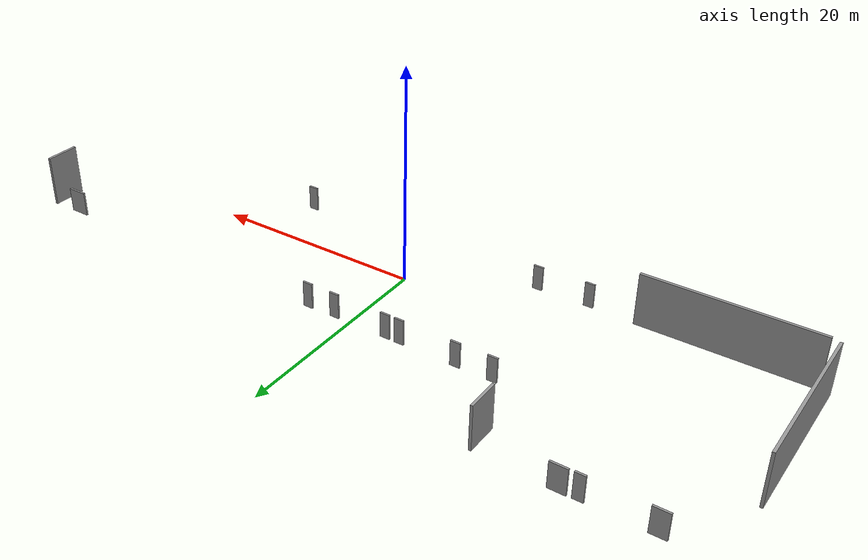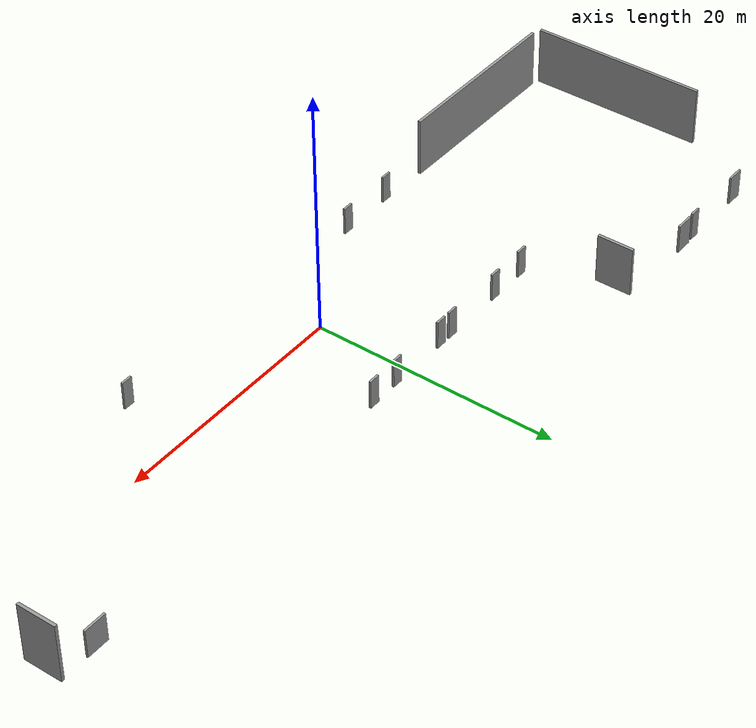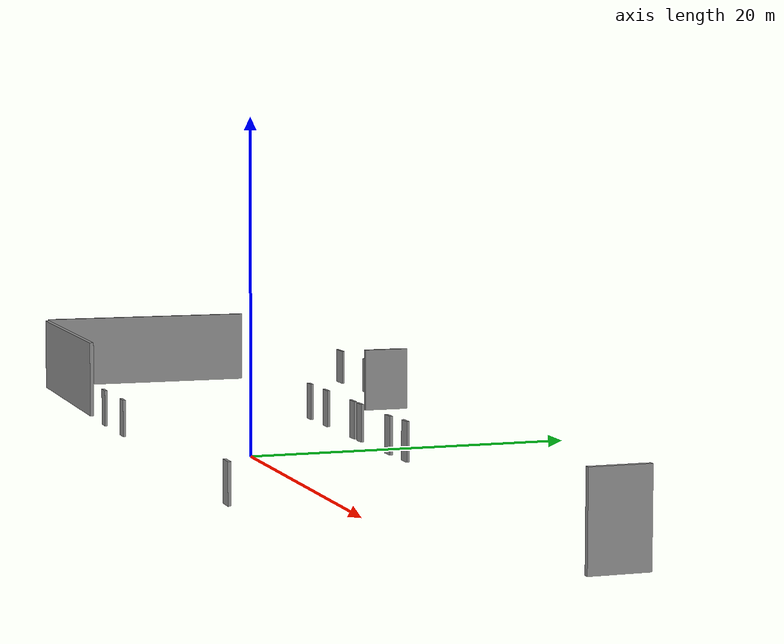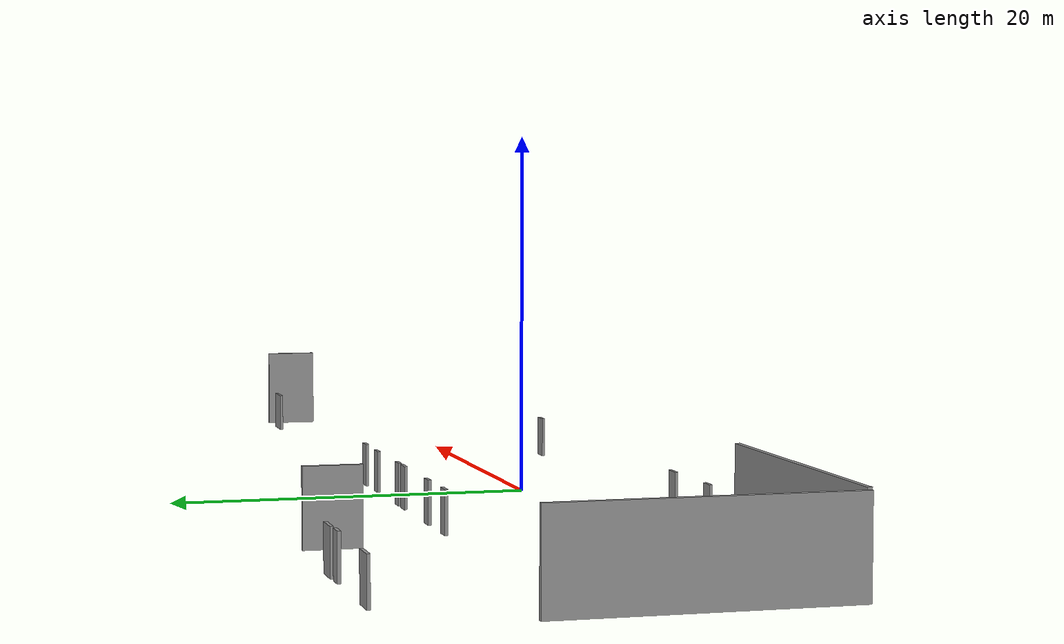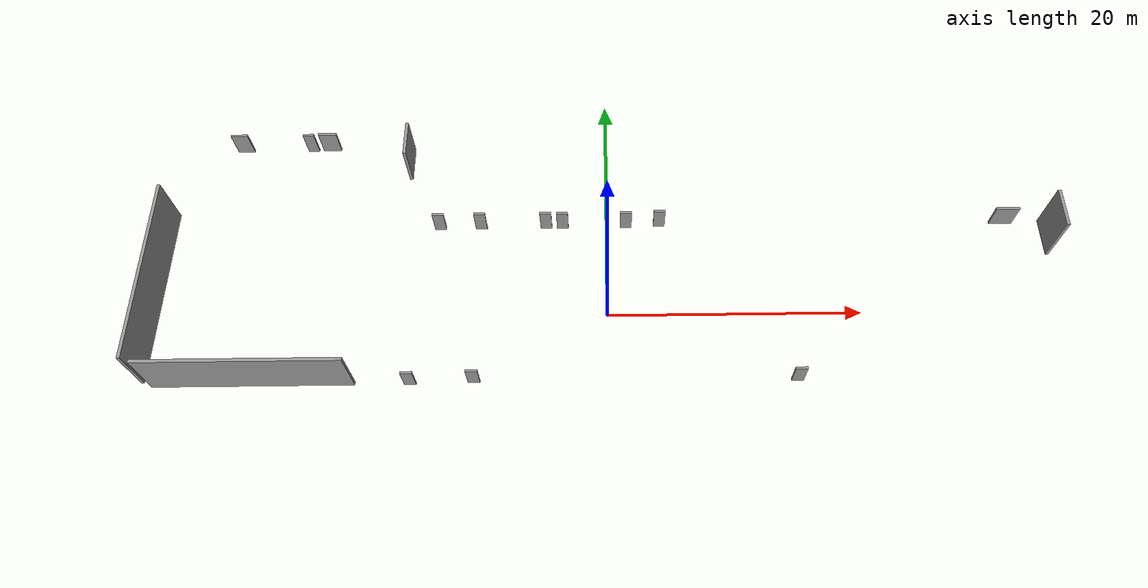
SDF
<?xml version='1.0'?>
<sdf version='1.7'>
  <model name='campus_doors'>
    <pose>0.175976 5.1365 0 0 -0 0</pose>
    <link name='Door_10'>
      <collision name='Door_10_Collision'>
        <geometry>
          <box>
            <size>0.92 0.17 2.35</size>
          </box>
        </geometry>
        <pose>0 0 1.175 0 -0 0</pose>
      </collision>
      <visual name='Door_10_Visual'>
        <pose>0 0 1.175 0 -0 0</pose>
        <geometry>
          <box>
            <size>0.92 0.17 2.35</size>
          </box>
        </geometry>
        <material>
          <script>
            <uri>file://media/materials/scripts/gazebo.material</uri>
            <name>Gazebo/Grey</name>
          </script>
        </material>
      </visual>
      <pose>-13.81 2.8905 0 0 -0 0</pose>
    </link>
    <link name='Door_11'>
      <collision name='Door_11_Collision'>
        <geometry>
          <box>
            <size>1.52 0.17 2.4</size>
          </box>
        </geometry>
        <pose>0 0 1.2 0 -0 0</pose>
      </collision>
      <visual name='Door_11_Visual'>
        <pose>0 0 1.2 0 -0 0</pose>
        <geometry>
          <box>
            <size>1.52 0.17 2.4</size>
          </box>
        </geometry>
        <material>
          <script>
            <uri>file://media/materials/scripts/gazebo.material</uri>
            <name>Gazebo/Grey</name>
          </script>
        </material>
      </visual>
      <pose>-23.6447 10.8106 0 0 -0 0</pose>
    </link>
    <link name='Door_12'>
      <collision name='Door_12_Collision'>
        <geometry>
          <box>
            <size>0.91 0.17 2.4</size>
          </box>
        </geometry>
        <pose>0 0 1.2 0 -0 0</pose>
      </collision>
      <visual name='Door_12_Visual'>
        <pose>0 0 1.2 0 -0 0</pose>
        <geometry>
          <box>
            <size>0.91 0.17 2.4</size>
          </box>
        </geometry>
        <material>
          <script>
            <uri>file://media/materials/scripts/gazebo.material</uri>
            <name>Gazebo/Grey</name>
          </script>
        </material>
      </visual>
      <pose>-25.226 10.7495 0 0 -0 0</pose>
    </link>
    <link name='Door_13'>
      <collision name='Door_13_Collision'>
        <geometry>
          <box>
            <size>1.4 0.17 2.4</size>
          </box>
        </geometry>
        <pose>0 0 1.2 0 -0 0</pose>
      </collision>
      <visual name='Door_13_Visual'>
        <pose>0 0 1.2 0 -0 0</pose>
        <geometry>
          <box>
            <size>1.4 0.17 2.4</size>
          </box>
        </geometry>
        <material>
          <script>
            <uri>file://media/materials/scripts/gazebo.material</uri>
            <name>Gazebo/Grey</name>
          </script>
        </material>
      </visual>
      <pose>-31.026 10.7495 0 0 -0 0</pose>
    </link>
    <link name='Door_17'>
      <collision name='Door_17_Collision'>
        <geometry>
          <box>
            <size>0.93 0.17 2.35</size>
          </box>
        </geometry>
        <pose>0 0 1.175 0 -0 0</pose>
      </collision>
      <visual name='Door_17_Visual'>
        <pose>0 0 1.175 0 -0 0</pose>
        <geometry>
          <box>
            <size>0.93 0.17 2.35</size>
          </box>
        </geometry>
        <material>
          <script>
            <uri>file://media/materials/scripts/gazebo.material</uri>
            <name>Gazebo/Grey</name>
          </script>
        </material>
      </visual>
      <pose>14.254 -10.6365 0 0 -0 0</pose>
    </link>
    <link name='Door_18'>
      <collision name='Door_18_Collision'>
        <geometry>
          <box>
            <size>0.9 0.17 2.3</size>
          </box>
        </geometry>
        <pose>0 0 1.15 0 -0 0</pose>
      </collision>
      <visual name='Door_18_Visual'>
        <pose>0 0 1.15 0 -0 0</pose>
        <geometry>
          <box>
            <size>0.9 0.17 2.3</size>
          </box>
        </geometry>
        <material>
          <script>
            <uri>file://media/materials/scripts/gazebo.material</uri>
            <name>Gazebo/Grey</name>
          </script>
        </material>
      </visual>
      <pose>-15.256 -10.6365 0 0 -0 0</pose>
    </link>
    <link name='Door_19'>
      <collision name='Door_19_Collision'>
        <geometry>
          <box>
            <size>0.91 0.17 2.3</size>
          </box>
        </geometry>
        <pose>0 0 1.15 0 -0 0</pose>
      </collision>
      <visual name='Door_19_Visual'>
        <pose>0 0 1.15 0 -0 0</pose>
        <geometry>
          <box>
            <size>0.91 0.17 2.3</size>
          </box>
        </geometry>
        <material>
          <script>
            <uri>file://media/materials/scripts/gazebo.material</uri>
            <name>Gazebo/Grey</name>
          </script>
        </material>
      </visual>
      <pose>-10.416 -10.5365 0 0 -0 0</pose>
    </link>
    <link name='Door_4'>
      <collision name='Door_4_Collision'>
        <geometry>
          <box>
            <size>1.9 0.17 2.35</size>
          </box>
        </geometry>
        <pose>0 0 1.175 0 -0 0</pose>
      </collision>
      <visual name='Door_4_Visual'>
        <pose>0 0 1.175 0 -0 0</pose>
        <geometry>
          <box>
            <size>1.9 0.17 2.35</size>
          </box>
        </geometry>
        <material>
          <script>
            <uri>file://media/materials/scripts/gazebo.material</uri>
            <name>Gazebo/Grey</name>
          </script>
        </material>
      </visual>
      <pose>32.374 2.9105 0 0 -0 0</pose>
    </link>
    <link name='Door_5'>
      <collision name='Door_5_Collision'>
        <geometry>
          <box>
            <size>0.92 0.17 2.4</size>
          </box>
        </geometry>
        <pose>0 0 1.2 0 -0 0</pose>
      </collision>
      <visual name='Door_5_Visual'>
        <pose>0 0 1.2 0 -0 0</pose>
        <geometry>
          <box>
            <size>0.92 0.17 2.4</size>
          </box>
        </geometry>
        <material>
          <script>
            <uri>file://media/materials/scripts/gazebo.material</uri>
            <name>Gazebo/Grey</name>
          </script>
        </material>
      </visual>
      <pose>4.12402 2.9715 0 0 -0 0</pose>
    </link>
    <link name='Door_6'>
      <collision name='Door_6_Collision'>
        <geometry>
          <box>
            <size>0.92 0.17 2.34</size>
          </box>
        </geometry>
        <pose>0 0 1.17 0 -0 0</pose>
      </collision>
      <visual name='Door_6_Visual'>
        <pose>0 0 1.17 0 -0 0</pose>
        <geometry>
          <box>
            <size>0.92 0.17 2.34</size>
          </box>
        </geometry>
        <material>
          <script>
            <uri>file://media/materials/scripts/gazebo.material</uri>
            <name>Gazebo/Grey</name>
          </script>
        </material>
      </visual>
      <pose>1.40402 2.9105 0 0 -0 0</pose>
    </link>
    <link name='Door_7'>
      <collision name='Door_7_Collision'>
        <geometry>
          <box>
            <size>0.92 0.17 2.35</size>
          </box>
        </geometry>
        <pose>0 0 1.175 0 -0 0</pose>
      </collision>
      <visual name='Door_7_Visual'>
        <pose>0 0 1.175 0 -0 0</pose>
        <geometry>
          <box>
            <size>0.92 0.17 2.35</size>
          </box>
        </geometry>
        <material>
          <script>
            <uri>file://media/materials/scripts/gazebo.material</uri>
            <name>Gazebo/Grey</name>
          </script>
        </material>
      </visual>
      <pose>-3.77598 2.9105 0 0 -0 0</pose>
    </link>
    <link name='Door_8'>
      <collision name='Door_8_Collision'>
        <geometry>
          <box>
            <size>0.92 0.17 2.35</size>
          </box>
        </geometry>
        <pose>0 0 1.175 0 -0 0</pose>
      </collision>
      <visual name='Door_8_Visual'>
        <pose>0 0 1.175 0 -0 0</pose>
        <geometry>
          <box>
            <size>0.92 0.17 2.35</size>
          </box>
        </geometry>
        <material>
          <script>
            <uri>file://media/materials/scripts/gazebo.material</uri>
            <name>Gazebo/Grey</name>
          </script>
        </material>
      </visual>
      <pose>-5.12598 2.9105 0 0 -0 0</pose>
    </link>
    <link name='Door_9'>
      <collision name='Door_9_Collision'>
        <geometry>
          <box>
            <size>0.92 0.17 2.35</size>
          </box>
        </geometry>
        <pose>0 0 1.175 0 -0 0</pose>
      </collision>
      <visual name='Door_9_Visual'>
        <pose>0 0 1.175 0 -0 0</pose>
        <geometry>
          <box>
            <size>0.92 0.17 2.35</size>
          </box>
        </geometry>
        <material>
          <script>
            <uri>file://media/materials/scripts/gazebo.material</uri>
            <name>Gazebo/Grey</name>
          </script>
        </material>
      </visual>
      <pose>-10.4593 2.91092 0 0 -0 0</pose>
    </link>
    <link name='Wall_15'>
      <collision name='Wall_15_Collision'>
        <geometry>
          <box>
            <size>3 0.25 4.1</size>
          </box>
        </geometry>
        <pose>0 0 2.05 0 -0 0</pose>
      </collision>
      <visual name='Wall_15_Visual'>
        <pose>0 0 2.05 0 -0 0</pose>
        <geometry>
          <box>
            <size>3 0.25 4.1</size>
          </box>
        </geometry>
        <material>
          <script>
            <uri>file://media/materials/scripts/gazebo.material</uri>
            <name>Gazebo/Grey</name>
          </script>
          <ambient>1 1 1 1</ambient>
        </material>
        <meta>
          <layer>0</layer>
        </meta>
      </visual>
      <pose>-16.626 9.1885 0 0 -0 1.5708</pose>
    </link>
    <link name='Wall_2'>
      <collision name='Wall_2_Collision'>
        <geometry>
          <box>
            <size>15.404 0.25 4.9</size>
          </box>
        </geometry>
        <pose>0 0 2.45 0 -0 0</pose>
      </collision>
      <visual name='Wall_2_Visual'>
        <pose>0 0 2.45 0 -0 0</pose>
        <geometry>
          <box>
            <size>15.404 0.25 4.9</size>
          </box>
        </geometry>
        <material>
          <script>
            <uri>file://media/materials/scripts/gazebo.material</uri>
            <name>Gazebo/Grey</name>
          </script>
          <ambient>1 1 1 1</ambient>
        </material>
        <meta>
          <layer>0</layer>
        </meta>
      </visual>
      <pose>-27.1655 -10.5635 0 0 -0 3.14159</pose>
    </link>
    <link name='Wall_4'>
      <pose>-35.624 -2.9675 0 0 -0 1.5708</pose>
      <visual name='Wall_4_Visual_0'>
        <pose>0 0 2.45 0 -0 0</pose>
        <geometry>
          <box>
            <size>14.712 0.25 4.9</size>
          </box>
        </geometry>
        <material>
          <script>
            <uri>file://media/materials/scripts/gazebo.material</uri>
            <name>Gazebo/Grey</name>
          </script>
          <ambient>1 1 1 1</ambient>
        </material>
        <meta>
          <layer>0</layer>
        </meta>
      </visual>
      <collision name='Wall_4_Collision_0'>
        <geometry>
          <box>
            <size>14.712 0.25 4.9</size>
          </box>
        </geometry>
        <pose>0 0 2.45 0 -0 0</pose>
      </collision>
    </link>
    <link name='Wall_9'>
      <collision name='Wall_9_Collision'>
        <geometry>
          <box>
            <size>3.164 0.25 4.9</size>
          </box>
        </geometry>
        <pose>0 0 2.45 0 -0 0</pose>
      </collision>
      <visual name='Wall_9_Visual'>
        <pose>0 0 2.45 0 -0 0</pose>
        <geometry>
          <box>
            <size>3.164 0.25 4.9</size>
          </box>
        </geometry>
        <material>
          <script>
            <uri>file://media/materials/scripts/gazebo.material</uri>
            <name>Gazebo/Grey</name>
          </script>
          <ambient>1 1 1 1</ambient>
        </material>
        <meta>
          <layer>0</layer>
        </meta>
      </visual>
      <pose>35.624 1.4705 0 0 -0 -1.5708</pose>
    </link>
    <static>1</static>
  </model>
</sdf>
